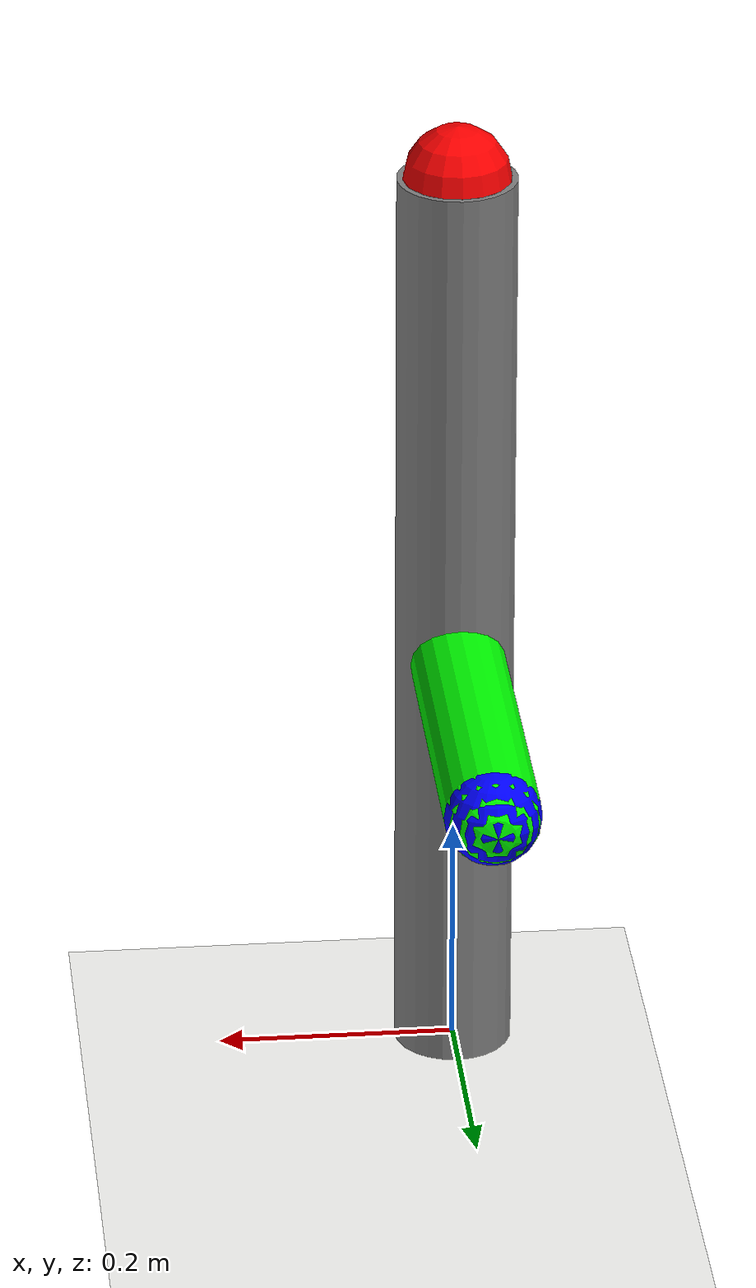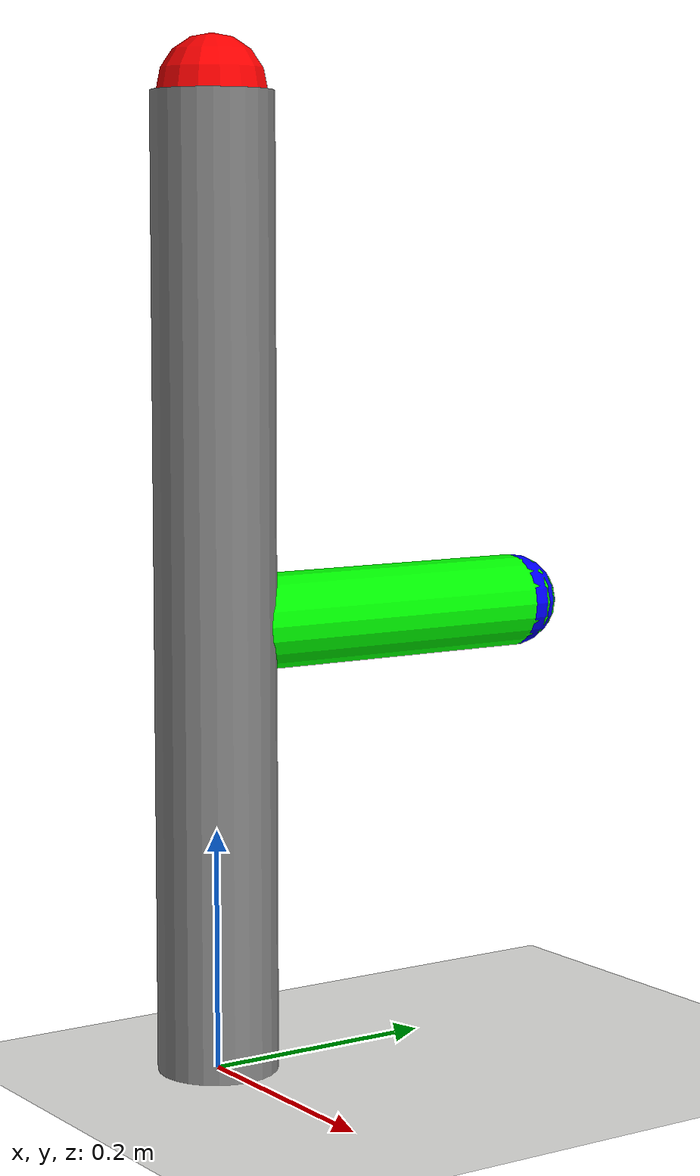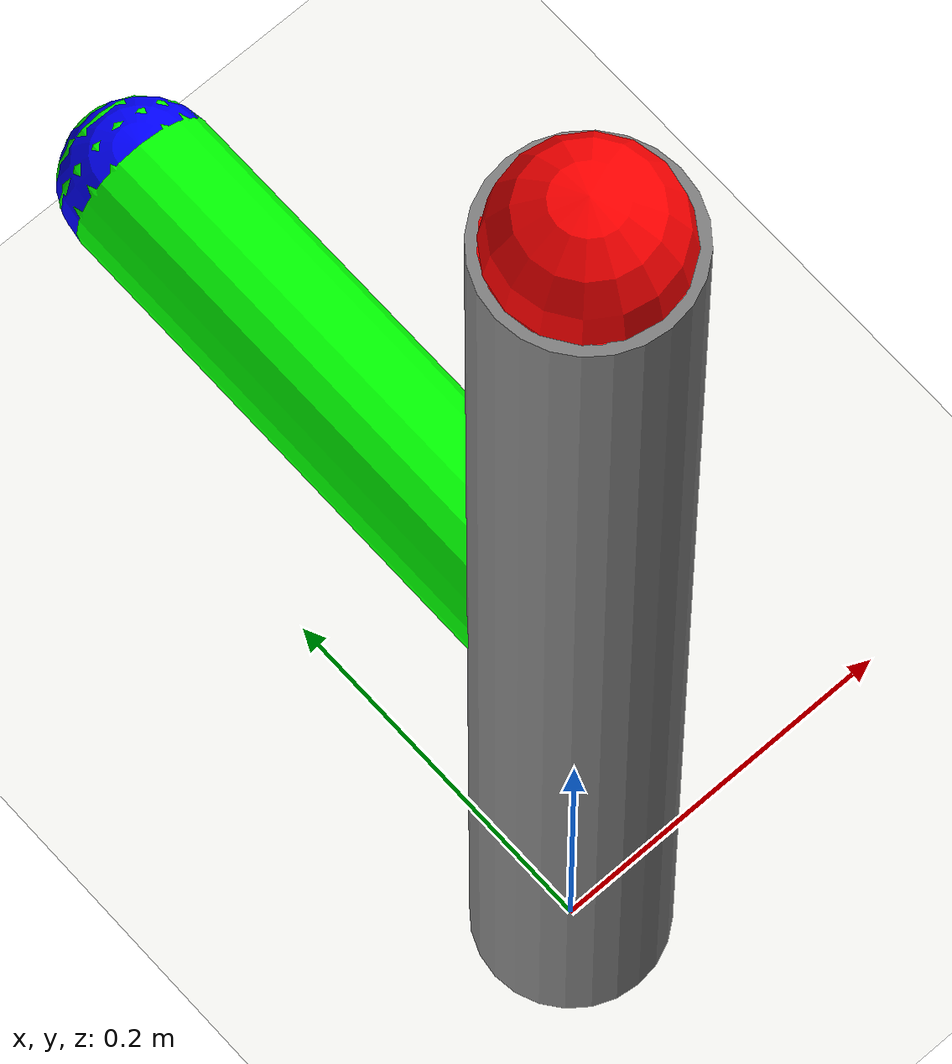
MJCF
<mujoco model="2_joint_arm">
    <asset>
        <texture type="skybox" name="sky" builtin="flat" rgb1="0.75 0.9 1" rgb2="0.75 0.9 1"
            width="512"
            height="512" />
        <material name="sky_mat" texture="sky" />
    </asset>

    <option gravity="0 0 -9.81" />

    <worldbody>
        <geom type="plane" size="10 10 1" rgba="0.969 0.969 0.957 1" />
        <camera name="main" pos="0 5 1" />

        <!-- has no child joints therefore treated as welded to the world -->
        <body name="base" pos="0 0 0">
            <geom type="cylinder" size="0.05 0.4" pos="0 0 0.4" rgba="0.5 0.5 0.5 1" />
        </body>

        <body name="first-arm-body" pos="0 0 0.8">
            <joint name="shoulder" type="hinge" axis="1 0 0" />
            <geom type="capsule" size="0.045" fromto="0 0 0 0 0 -0.43" density="1000" rgba="1 0 0 1" />

            <body name="fore-arm-body" pos="0 0 -0.43">
                <joint name="elbow" type="hinge" axis="1 0 0" />
                <geom type="capsule" size="0.04" fromto="0 0 0 0 0.3 0" density="1000"
                    rgba="0 1 0 1" />

                <body name="hand" pos="0 0.3 0">
                    <geom type="sphere" size="0.04" density="1000" rgba="0 0 1 1" />
                </body>
            </body>
        </body>
    </worldbody>

    <actuator>
        <motor joint="shoulder" gear="10" />
        <motor joint="elbow" gear="10" />
    </actuator>
</mujoco>
